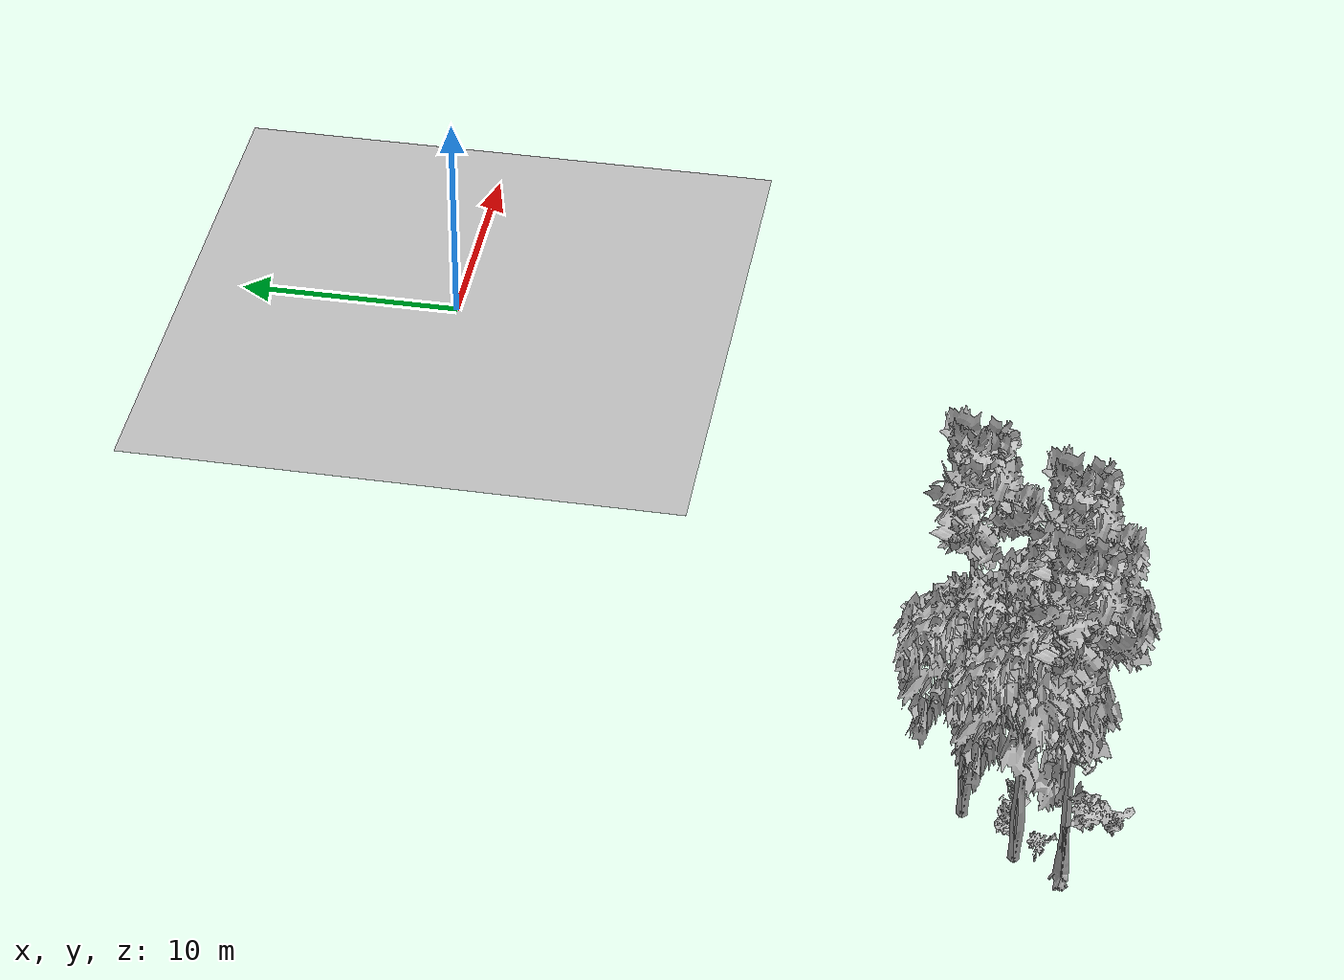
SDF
<sdf version="1.7">
 <world name="default">
  <model name="ground_plane">
   <static>1</static>
   <link name="link">
    <collision name="collision">
     <pose>-50 0 0 0 -0 0</pose>
     <geometry><plane><normal>0 0 1</normal><size>80 80</size></plane></geometry>
     <surface><contact><ode><min_depth>0.01</min_depth><max_vel>0</max_vel></ode></contact></surface>
    </collision>
    <visual name="grass">
     <cast_shadows>0</cast_shadows>
     <geometry>
      <mesh>
       <scale>0.46714285714285714 0.46714285714285714 0.1</scale>
       <uri>file://grass_plane/meshes/grass_plane.dae</uri>
      </mesh>
     </geometry>
    </visual>
   </link>
  </model>
  <model name="Tree 97">
   <static>1</static>
   <pose>-31.275118452951528 -30.276661839937155 0 1.57079 -0 0</pose>
   <link name="link">
    <collision name="collision">
     <geometry><mesh><scale>3.5 5 3.5</scale><uri>model://tree_9/meshes/tree_9.obj</uri></mesh></geometry>
    </collision>
    <visual name="visual">
     <geometry><mesh><scale>3.5 5 3.5</scale><uri>model://tree_9/meshes/tree_9.obj</uri></mesh></geometry>
    </visual>
   </link>
  </model>
  <model name="Tree 219">
   <static>1</static>
   <pose>-28.81545637697126 -26.19047739276339 0 1.57079 -0 0</pose>
   <link name="link">
    <collision name="collision">
     <geometry><mesh><scale>3.5 5 3.5</scale><uri>model://tree_2/meshes/tree_2.obj</uri></mesh></geometry>
    </collision>
    <visual name="visual">
     <geometry><mesh><scale>3.5 5 3.5</scale><uri>model://tree_2/meshes/tree_2.obj</uri></mesh></geometry>
    </visual>
   </link>
  </model>
  <model name="Tree 253">
   <static>1</static>
   <pose>-30.933605152958677 -28.424497846520495 0 1.57079 -0 0</pose>
   <link name="link">
    <collision name="collision">
     <geometry><mesh><scale>3.5 5 3.5</scale><uri>model://tree_2/meshes/tree_2.obj</uri></mesh></geometry>
    </collision>
    <visual name="visual">
     <geometry><mesh><scale>3.5 5 3.5</scale><uri>model://tree_2/meshes/tree_2.obj</uri></mesh></geometry>
    </visual>
   </link>
  </model>
  <model name="Tree 386">
   <static>1</static>
   <pose>-24.986396065687508 -25.80773253567547 0 1.57079 -0 0</pose>
   <link name="link">
    <collision name="collision">
     <geometry><mesh><scale>3.5 5 3.5</scale><uri>model://tree_9/meshes/tree_9.obj</uri></mesh></geometry>
    </collision>
    <visual name="visual">
     <geometry><mesh><scale>3.5 5 3.5</scale><uri>model://tree_9/meshes/tree_9.obj</uri></mesh></geometry>
    </visual>
   </link>
  </model>
  <model name="Tree 431">
   <static>1</static>
   <pose>-26.660853271610588 -29.769222283334678 0 1.57079 -0 0</pose>
   <link name="link">
    <collision name="collision">
     <geometry><mesh><scale>3.5 5 3.5</scale><uri>model://tree_9/meshes/tree_9.obj</uri></mesh></geometry>
    </collision>
    <visual name="visual">
     <geometry><mesh><scale>3.5 5 3.5</scale><uri>model://tree_9/meshes/tree_9.obj</uri></mesh></geometry>
    </visual>
   </link>
  </model>
  <model name="Tree 531">
   <static>1</static>
   <pose>-25.564664457607968 -29.517078134555987 0 1.57079 -0 0</pose>
   <link name="link">
    <collision name="collision">
     <geometry><mesh><scale>3.5 5 3.5</scale><uri>model://tree_2/meshes/tree_2.obj</uri></mesh></geometry>
    </collision>
    <visual name="visual">
     <geometry><mesh><scale>3.5 5 3.5</scale><uri>model://tree_2/meshes/tree_2.obj</uri></mesh></geometry>
    </visual>
   </link>
  </model>
  <model name="Bush 111">
   <static>1</static>
   <pose>-29.038784977225138 -27.993924773651067 0 1.57079 -0 0</pose>
   <link name="link">
    <collision name="collision">
     <geometry><mesh><scale>2 2 2</scale><uri>model://bush_2/meshes/bush_2.obj</uri></mesh></geometry>
     <surface><contact><collide_without_contact>false</collide_without_contact></contact></surface>
    </collision>
    <visual name="visual">
     <geometry><mesh><scale>2 2 2</scale><uri>model://bush_2/meshes/bush_2.obj</uri></mesh></geometry>
    </visual>
   </link>
  </model>
  <model name="Bush 130">
   <static>1</static>
   <pose>-28.743874293045316 -31.23461286340345 0 1.57079 -0 0</pose>
   <link name="link">
    <collision name="collision">
     <geometry><mesh><scale>2 2 2</scale><uri>model://bush_1/meshes/bush_1.obj</uri></mesh></geometry>
     <surface><contact><collide_without_contact>false</collide_without_contact></contact></surface>
    </collision>
    <visual name="visual">
     <geometry><mesh><scale>2 2 2</scale><uri>model://bush_1/meshes/bush_1.obj</uri></mesh></geometry>
    </visual>
   </link>
  </model>
  <model name="Bush 229">
   <static>1</static>
   <pose>-27.84292836270249 -28.3286248013449 0 1.57079 -0 0</pose>
   <link name="link">
    <collision name="collision">
     <geometry><mesh><scale>2 2 2</scale><uri>model://bush_4/meshes/bush_4.obj</uri></mesh></geometry>
     <surface><contact><collide_without_contact>false</collide_without_contact></contact></surface>
    </collision>
    <visual name="visual">
     <geometry><mesh><scale>2 2 2</scale><uri>model://bush_4/meshes/bush_4.obj</uri></mesh></geometry>
    </visual>
   </link>
  </model>
  <model name="Bush 267">
   <static>1</static>
   <pose>-28.968723755826947 -28.022077213173226 0 1.57079 -0 0</pose>
   <link name="link">
    <collision name="collision">
     <geometry><mesh><scale>2 2 2</scale><uri>model://bush_0/meshes/bush_0.obj</uri></mesh></geometry>
     <surface><contact><collide_without_contact>false</collide_without_contact></contact></surface>
    </collision>
    <visual name="visual">
     <geometry><mesh><scale>2 2 2</scale><uri>model://bush_0/meshes/bush_0.obj</uri></mesh></geometry>
    </visual>
   </link>
  </model>
  <model name="Bush 305">
   <static>1</static>
   <pose>-28.857033819978398 -32.062457656672514 0 1.57079 -0 0</pose>
   <link name="link">
    <collision name="collision">
     <geometry><mesh><scale>2 2 2</scale><uri>model://bush_0/meshes/bush_0.obj</uri></mesh></geometry>
     <surface><contact><collide_without_contact>false</collide_without_contact></contact></surface>
    </collision>
    <visual name="visual">
     <geometry><mesh><scale>2 2 2</scale><uri>model://bush_0/meshes/bush_0.obj</uri></mesh></geometry>
    </visual>
   </link>
  </model>
  <model name="Bush 327">
   <static>1</static>
   <pose>-30.834035698978177 -29.20513955350379 0 1.57079 -0 0</pose>
   <link name="link">
    <collision name="collision">
     <geometry><mesh><scale>2 2 2</scale><uri>model://bush_5/meshes/bush_5.obj</uri></mesh></geometry>
     <surface><contact><collide_without_contact>false</collide_without_contact></contact></surface>
    </collision>
    <visual name="visual">
     <geometry><mesh><scale>2 2 2</scale><uri>model://bush_5/meshes/bush_5.obj</uri></mesh></geometry>
    </visual>
   </link>
  </model>
 </world>
</sdf>
